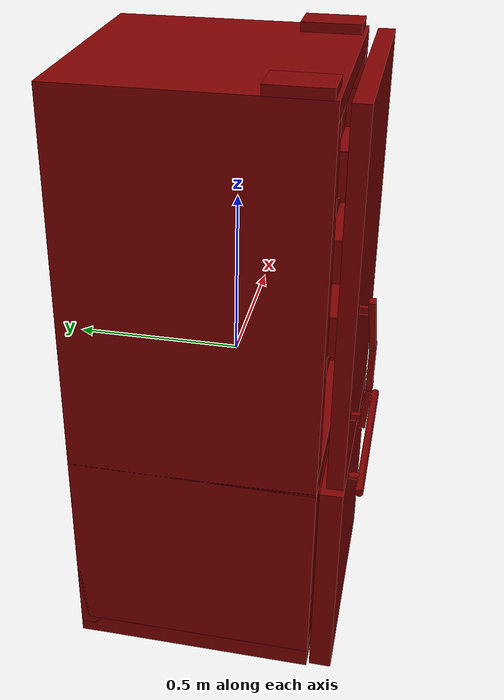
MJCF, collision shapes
<mujoco model="model">
  <compiler angle="radian"/>
  <asset>
    <mesh file="visuals/Body001.obj" name="Body001_vis"/>
    <mesh file="visuals/Door001.obj" name="Door001_vis"/>
    <mesh file="visuals/Door001_Clear.obj" name="Door001_Clear_vis"/>
    <mesh file="visuals/Drawer001.obj" name="Drawer001_vis"/>
    <mesh file="visuals/Drawer002.obj" name="Drawer002_vis"/>
    <texture file="visuals/T_BC001.png" name="Body001_material" type="2d"/>
    <material name="Body001_material" rgba="1 1 1 1.0" texture="Body001_material" shininess="0.21689307689666748" specular="0.3103448502657381"/>
    <texture file="visuals/T_BC001.png" name="Door001_material" type="2d"/>
    <material name="Door001_material" rgba="1 1 1 1.0" texture="Door001_material" shininess="0.21689307689666748" specular="0.3103448502657381"/>
    <texture file="visuals/T_BC001.png" name="Door001_Clear_material" type="2d"/>
    <material name="Door001_Clear_material" rgba="1 1 1 0.3496240973472595" texture="Door001_Clear_material" shininess="0.141421377658844" specular="0.3103448502657381"/>
    <texture file="visuals/T_BC001.png" name="Drawer001_material" type="2d"/>
    <material name="Drawer001_material" rgba="1 1 1 1.0" texture="Drawer001_material" shininess="0.21689307689666748" specular="0.3103448502657381"/>
    <texture file="visuals/T_BC001.png" name="Drawer002_material" type="2d"/>
    <material name="Drawer002_material" rgba="1 1 1 1.0" texture="Drawer002_material" shininess="0.21689307689666748" specular="0.3103448502657381"/>
  </asset>
  <default>
    <default class="visual">
      <geom conaffinity="0" contype="0" group="1" type="mesh"/>
    </default>
    <default class="collision">
      <geom group="0" rgba="0.5 0 0 0.5"/>
    </default>
    <default class="spawn">
      <geom group="0" rgba="1 1 1 0.5" contype="0" conaffinity="0"/>
      <site group="0" rgba="1 1 1 0.5"/>
    </default>
    <default class="region">
      <geom group="1" conaffinity="0" contype="0" rgba="0 1 0 0"/>
    </default>
  </default>
  <worldbody>
    <body>
      <body name="object">
        <geom mesh="Body001_vis" type="mesh" solimp="0.998 0.998 0.001" solref="0.001 1" density="100" friction="0.95 0.3 0.1" class="visual" material="Body001_material"/>
        <geom class="collision" type="box" pos="0.000000 0.324767 0.004388" size="0.36860865354537964 0.11534851789474487 0.9032153487205505" quat="1.0 0.0 0.0 0.0"/>
        <geom class="collision" type="box" pos="0.340394 0.064428 0.015051" size="0.02821429818868637 0.37568747997283936 0.8925526738166809" quat="1.0 0.0 0.0 0.0"/>
        <geom class="collision" type="box" pos="-0.335347 0.064428 0.016788" size="0.0332617461681366 0.37568747997283936 0.8908159732818604" quat="1.0 0.0 0.0 0.0"/>
        <geom class="collision" type="box" pos="-0.000000 0.064428 -0.904370" size="0.36860865354537964 0.37568747997283936 0.03111211210489273" quat="1.0 0.0 0.0 0.0"/>
        <geom class="collision" type="box" pos="-0.000000 0.064428 -0.225211" size="0.36860865354537964 0.37568747997283936 0.02653501182794571" quat="1.0 0.0 0.0 0.0"/>
        <geom class="collision" type="box" pos="-0.000000 0.064428 0.878875" size="0.36860865354537964 0.37568747997283936 0.028729252517223358" quat="1.0 0.0 0.0 0.0"/>
        <geom class="collision" type="box" pos="0.004731 -0.026445 0.515698" size="0.3099266588687897 0.23814259469509125 0.0045350417494773865" quat="1.0 0.0 0.0 0.0"/>
        <geom class="collision" type="box" pos="0.004731 -0.024614 0.155067" size="0.3099266588687897 0.23615916073322296 0.004863923881202936" quat="1.0 0.0 0.0 0.0"/>
        <geom class="collision" type="box" pos="-0.308581 -0.213408 0.921154" size="0.06002810597419739 0.08773642778396606 0.014327946119010448" quat="1.0 0.0 0.0 0.0"/>
        <geom class="collision" type="box" pos="0.312522 -0.213408 0.921154" size="0.056086938828229904 0.08773642778396606 0.014327946119010448" quat="1.0 0.0 0.0 0.0"/>
        <body name="Door001">
          <joint axis="0.0 0.0 1.0" pos="0.330441 -0.350181 0.343186" limited="true" name="Door001_joint" range="0.0 1.5707963267948966" type="hinge" damping="1" frictionloss="1" armature=".01" stiffness="0.05"/>
          <geom mesh="Door001_vis" type="mesh" solimp="0.998 0.998 0.001" solref="0.001 1" density="100" friction="0.95 0.3 0.1" class="visual" material="Door001_material"/>
          <geom class="collision" type="box" pos="-0.003362 -0.362817 0.345658" size="0.365246444940567 0.02485358528792858 0.5588772296905518" quat="1.0 0.0 0.0 0.0"/>
          <geom class="collision" type="box" pos="-0.310267 -0.401950 0.341717" size="0.0087030790746212 0.014697672799229622 0.008720160461962223" quat="1.0 0.0 0.0 0.0"/>
          <geom class="collision" type="box" pos="-0.310267 -0.401950 0.005880" size="0.0087030790746212 0.014697672799229622 0.008720160461962223" quat="1.0 0.0 0.0 0.0"/>
          <geom class="collision" type="box" pos="-0.309800 -0.426493 0.299932" size="0.016108505427837372 0.07008692622184753 0.008720162324607372" quat="0.7363455891609192 0.6766056418418884 0.0 0.0"/>
          <geom class="collision" type="box" pos="-0.309800 -0.426917 0.050550" size="0.016108505427837372 0.07008692622184753 0.008720162324607372" quat="8.516791893953268e-08 1.8895617515113372e-08 -0.7363455295562744 0.6766057014465332"/>
          <geom class="collision" type="box" pos="-0.309800 -0.431981 0.173219" size="0.016108505427837372 0.07008692622184753 0.008720162324607372" quat="2.2919316222669295e-08 8.417436703211933e-08 0.7108146548271179 -0.7033793330192566"/>
          <body name="Door001_Clear">
            <geom mesh="Door001_Clear_vis" type="mesh" solimp="0.998 0.998 0.001" solref="0.001 1" density="100" friction="0.95 0.3 0.1" class="visual" material="Door001_Clear_material"/>
            <geom class="collision" type="box" pos="0.002941 -0.357188 0.449026" size="0.2734219431877136 0.0029092642944306135 0.0609610341489315" quat="1.0 0.0 0.0 0.0"/>
            <geom class="collision" type="box" pos="0.002941 -0.357188 0.689964" size="0.2734219431877136 0.0029092642944306135 0.060961026698350906" quat="1.0 0.0 0.0 0.0"/>
            <geom class="collision" type="box" pos="0.002941 -0.357188 0.222740" size="0.2734219431877136 0.0029092642944306135 0.0609610341489315" quat="1.0 0.0 0.0 0.0"/>
            <geom class="collision" type="box" pos="0.003500 -0.265375 0.222740" size="0.26612183451652527 0.0029092642944306135 0.0609610341489315" quat="1.0 0.0 0.0 0.0"/>
            <geom class="collision" type="box" pos="0.003500 -0.265375 0.689964" size="0.26612183451652527 0.0029092642944306135 0.060961026698350906" quat="1.0 0.0 0.0 0.0"/>
            <geom class="collision" type="box" pos="0.003500 -0.265375 0.450174" size="0.26612183451652527 0.0029092642944306135 0.0609610341489315" quat="1.0 0.0 0.0 0.0"/>
            <geom class="collision" type="box" pos="-0.266373 -0.311281 0.222740" size="0.002909292932599783 0.048264432698488235 0.0609610341489315" quat="1.0 0.0 0.0 0.0"/>
            <geom class="collision" type="box" pos="-0.266373 -0.311281 0.689964" size="0.002909292932599783 0.048264432698488235 0.060961026698350906" quat="1.0 0.0 0.0 0.0"/>
            <geom class="collision" type="box" pos="-0.266373 -0.311281 0.449026" size="0.002909292932599783 0.048264432698488235 0.0609610341489315" quat="1.0 0.0 0.0 0.0"/>
            <geom class="collision" type="box" pos="0.272571 -0.311281 0.222740" size="0.0029092931654304266 0.048264432698488235 0.0609610341489315" quat="1.0 0.0 0.0 0.0"/>
            <geom class="collision" type="box" pos="0.272571 -0.311281 0.689964" size="0.0029092931654304266 0.048264432698488235 0.060961026698350906" quat="1.0 0.0 0.0 0.0"/>
            <geom class="collision" type="box" pos="0.272571 -0.311281 0.450174" size="0.0029092931654304266 0.048264432698488235 0.0609610341489315" quat="1.0 0.0 0.0 0.0"/>
            <geom class="collision" type="box" pos="0.003500 -0.311319 0.165154" size="0.26612183451652527 0.04291462525725365 0.003375692293047905" quat="1.0 0.0 0.0 0.0"/>
            <geom class="collision" type="box" pos="0.003500 -0.311319 0.632378" size="0.26612183451652527 0.04291462525725365 0.0033756857737898827" quat="1.0 0.0 0.0 0.0"/>
            <geom class="collision" type="box" pos="0.003500 -0.311319 0.391441" size="0.26612183451652527 0.04291462525725365 0.0033756988123059273" quat="1.0 0.0 0.0 0.0"/>
          </body>
        </body>
        <body name="Drawer001">
          <joint axis="0.0 -1.0 0.0" pos="0.005636 -0.035243 -0.022784" limited="true" name="Drawer001_joint" range="0.0 0.4" type="slide" damping="1" frictionloss="1" armature=".01" stiffness="0.05"/>
          <geom mesh="Drawer001_vis" type="mesh" solimp="0.998 0.998 0.001" solref="0.001 1" density="100" friction="0.95 0.3 0.1" class="visual" material="Drawer001_material"/>
          <geom class="collision" type="box" pos="0.006058 -0.250218 0.088109" size="0.27656400203704834 0.015161505900323391 0.052633240818977356" quat="1.0 0.0 0.0 0.0"/>
          <geom class="collision" type="box" pos="0.005508 -0.019388 -0.157976" size="0.2609947621822357 0.20561489462852478 0.01050218939781189" quat="1.0 0.0 0.0 0.0"/>
          <geom class="collision" type="box" pos="0.008186 0.189887 -0.028631" size="0.2611665427684784 0.005565826315432787 0.13475356996059418" quat="1.0 0.0 0.0 0.0"/>
          <geom class="collision" type="box" pos="-0.261008 -0.022692 -0.029376" size="0.005673422943800688 0.2138427197933197 0.13400934636592865" quat="1.0 0.0 0.0 0.0"/>
          <geom class="collision" type="box" pos="0.272366 -0.016986 -0.028117" size="0.005673425272107124 0.21954840421676636 0.13526755571365356" quat="1.0 0.0 0.0 0.0"/>
          <geom class="collision" type="box" pos="0.006058 -0.250218 -0.113755" size="0.27656710147857666 0.015161704272031784 0.07338865101337433" quat="1.0 0.0 0.0 0.0"/>
          <geom class="collision" type="box" pos="-0.153624 -0.250218 -0.002886" size="0.1168852224946022 0.015161710791289806 0.03786835819482803" quat="1.0 0.0 0.0 0.0"/>
          <geom class="collision" type="box" pos="0.189827 -0.250218 -0.002886" size="0.09167642146348953 0.015161717310547829 0.03786835819482803" quat="1.0 0.0 0.0 0.0"/>
          <geom class="collision" type="box" pos="0.031288 -0.262865 0.022657" size="0.06702731549739838 0.002514214487746358 0.012567557394504547" quat="1.0 0.0 0.0 0.0"/>
          <geom class="collision" type="box" pos="0.031288 -0.236158 -0.002561" size="0.06702733039855957 0.0007536982302553952 0.036608051508665085" quat="1.0 0.0 0.0 0.0"/>
        </body>
        <body name="Drawer002">
          <joint axis="0.0 -1.0 0.0" pos="0.000164 -0.119700 -0.580815" limited="true" name="Drawer002_joint" range="0.0 0.4" type="slide" damping="1" frictionloss="1" armature=".01" stiffness="0.05"/>
          <geom mesh="Drawer002_vis" type="mesh" solimp="0.998 0.998 0.001" solref="0.001 1" density="100" friction="0.95 0.3 0.1" class="visual" material="Drawer002_material"/>
          <geom class="collision" type="box" pos="0.000164 -0.353716 -0.584501" size="0.3652464747428894 0.033932894468307495 0.34308695793151855" quat="1.0 0.0 0.0 0.0"/>
          <geom class="collision" type="box" pos="-0.000358 -0.054693 -0.858712" size="0.2865025997161865 0.2522197961807251 0.005408836994320154" quat="1.0 0.0 0.0 0.0"/>
          <geom class="collision" type="box" pos="-0.273048 -0.062916 -0.579877" size="0.016175145283341408 0.26179173588752747 0.28013062477111816" quat="1.0 0.0 0.0 0.0"/>
          <geom class="collision" type="box" pos="0.267911 -0.062916 -0.579877" size="0.016791969537734985 0.261791467666626 0.28013038635253906" quat="1.0 0.0 0.0 0.0"/>
          <geom class="collision" type="box" pos="-0.000871 0.196041 -0.579601" size="0.2749098837375641 0.0029660293366760015 0.28077176213264465" quat="1.0 0.0 0.0 0.0"/>
          <geom class="collision" type="cylinder" pos="-0.198145 -0.406305 -0.286106" size="0.010353758931159973 0.0171792134642601" quat="0.49999770522117615 0.5000023245811462 0.49999767541885376 -0.5000022649765015"/>
          <geom class="collision" type="cylinder" pos="-0.000098 -0.427534 -0.286372" size="0.012027639895677567 0.2780439257621765" quat="0.7071068286895752 -4.750302906586512e-08 0.7071067094802856 4.7503018407724085e-08"/>
          <geom class="collision" type="cylinder" pos="0.197789 -0.406305 -0.286106" size="0.010353758931159973 0.0171792134642601" quat="0.49999770522117615 0.5000023245811462 0.49999767541885376 -0.5000022649765015"/>
        </body>
        <geom class="region" name="reg_main" type="box" pos="0.0 0.026233499999999993 0.0" size="0.368609 0.41388250000000004 0.935482"/>
      </body>
    </body>
  </worldbody>
  <actuator>
    <motor name="Door001_joint_actuator" joint="Door001_joint" gear="50"/>
    <motor name="Drawer001_joint_actuator" joint="Drawer001_joint" gear="50"/>
    <motor name="Drawer002_joint_actuator" joint="Drawer002_joint" gear="50"/>
  </actuator>
</mujoco>
